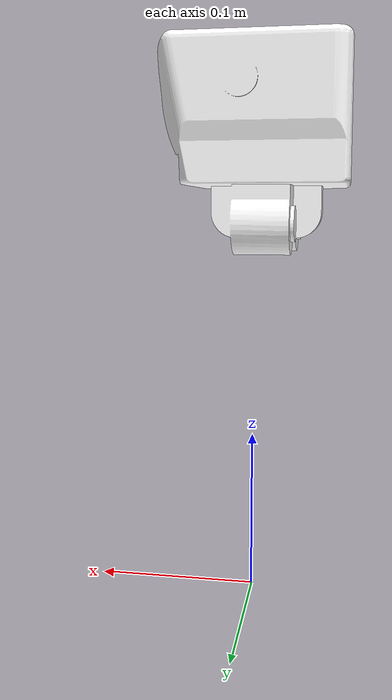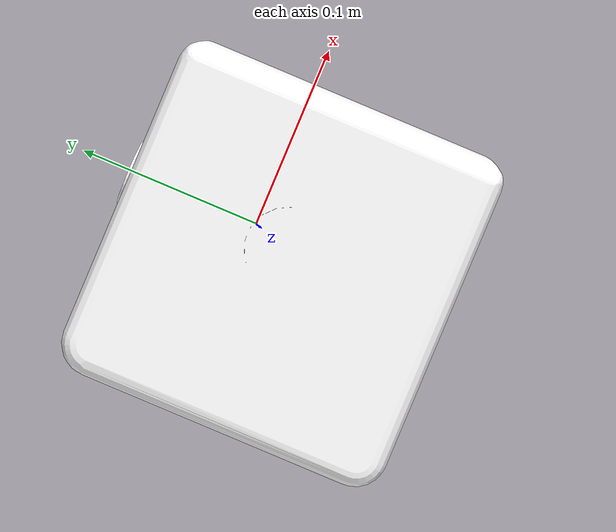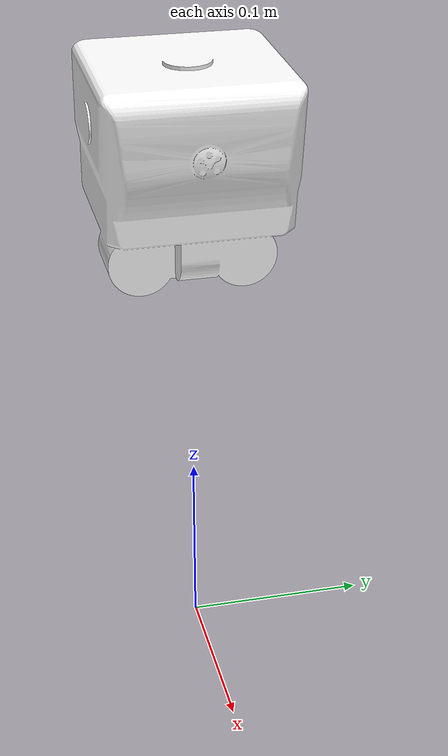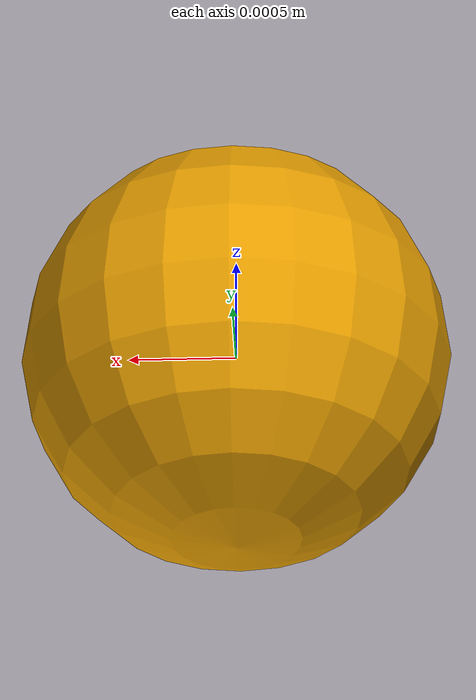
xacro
<robot name="base" xmlns:xacro="http://wiki.ros.org/xacro">

  <xacro:property name="part_name" value="base" />
  <xacro:property name="interial_x" value="-0.00671487104263047" />
  <xacro:property name="interial_y" value="-0.000225582019654342" />
  <xacro:property name="interial_z" value="-0.0079919194119481" />

  <xacro:property name="interial_mass" value="1.0296612030539" />

  <xacro:property name="interial_ixx" value="0.00180022359518362" />
  <xacro:property name="interial_ixy" value="1.1918387954471E-07" />
  <xacro:property name="interial_ixz" value="-5.28660375448492E-05" />
  <xacro:property name="interial_iyy" value="0.00176811056794777" />
  <xacro:property name="interial_iyz" value="1.82106435044606E-06" />
  <xacro:property name="interial_izz" value="0.00168298836267856" />
  <xacro:property name="mesh_file" value="package://yanshee/meshes/base_link.STL" />
  <xacro:property name="joint_offset_z" value="0.3" />

  <link name='world'>
    <visual>
      <geometry>
        <sphere radius="0.001" />
      </geometry>
    </visual>
  </link>

  <link name="${part_name}_link">
    <inertial>
      <origin xyz="${interial_x} ${interial_y} ${interial_z}" rpy="0 0 0" />
      <mass value="${interial_mass}" />
      <inertia
        ixx="${interial_ixx}"
        ixy="${interial_ixy}"
        ixz="${interial_ixz}"
        iyy="${interial_iyy}"
        iyz="${interial_iyz}"
        izz="${interial_izz}" />
    </inertial>

    <visual>
      <origin xyz="0 0 0" rpy="0 0 0" />
      <geometry>
        <mesh filename="${mesh_file}" />
      </geometry>
      <material name="">
        <color rgba="1 1 1 1" />
      </material>
    </visual>

    <collision>
      <origin xyz="0 0 0" rpy="0 0 0" />
      <geometry>
        <mesh filename="${mesh_file}" />
      </geometry>
    </collision>
  </link>

  <gazebo reference="${part_name}_link">
  </gazebo>

  <joint name="${part_name}_joint" type="fixed">
    <parent link="world"/>
    <child link="base_link"/>
    <origin rpy="0.0 0.0 0.0" xyz="0.0 0.0 ${joint_offset_z}"/>
  </joint>

</robot>
